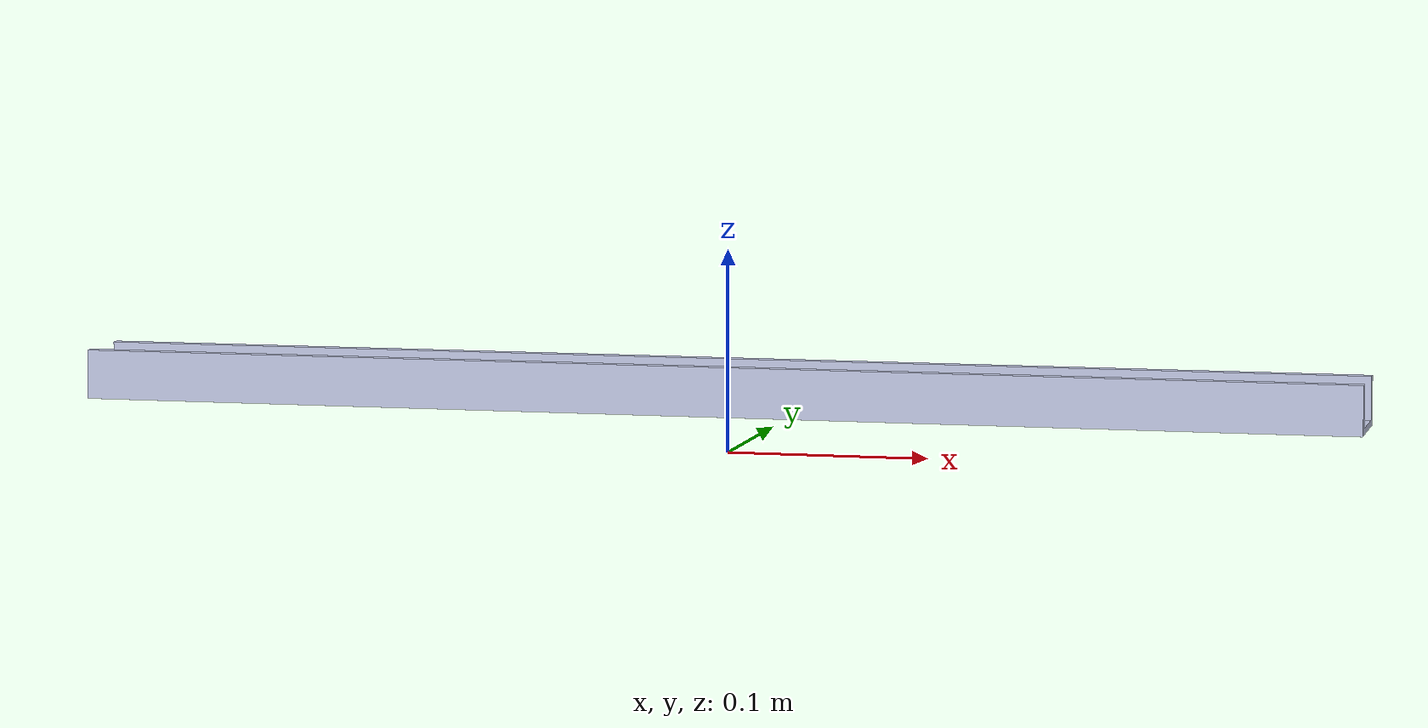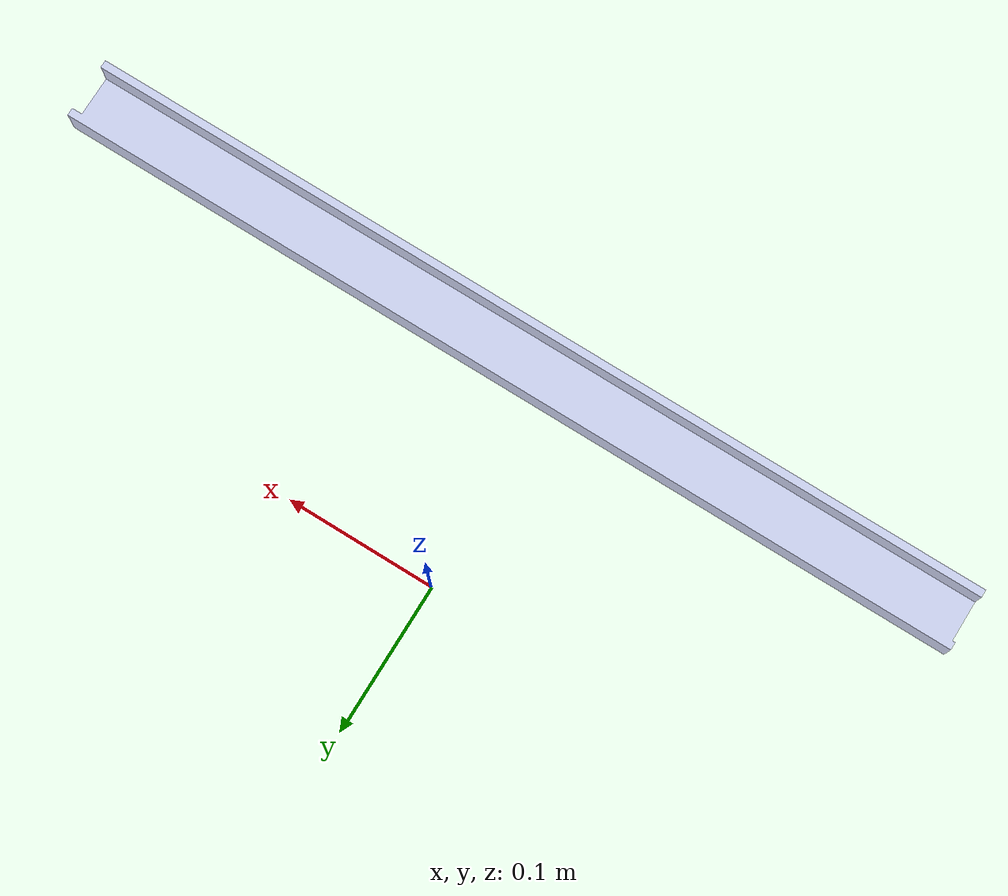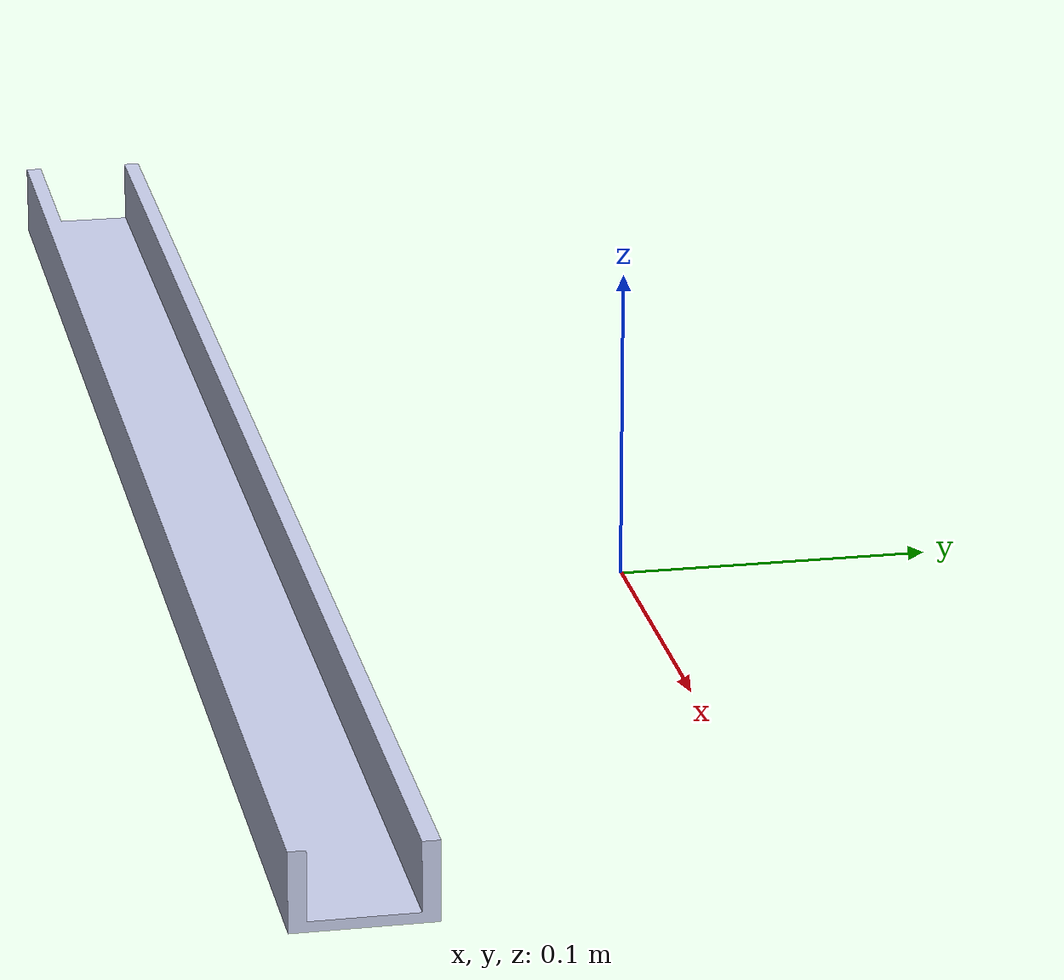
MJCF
<mujoco model="Assembly_mounting_rod_v5">
  <compiler meshdir="./" />

  <asset>
    <mesh name="base_link" file="base_link.STL" scale="1 1 1"/>
  </asset>

  <worldbody>
    <body name="base_link" pos="0 0 0">
      <joint type="free"/>
      <inertial pos="0 -0.1 0" mass="0.192"
                fullinertia="5.6605E-05 0.00577 0.0058066 -3.5505E-20 -7.1115E-22 9.058E-21" />
      <geom type="mesh" mesh="base_link" pos="0 0 0" rgba="0.79216 0.81961 0.93333 1"/>
    </body>
  </worldbody>
</mujoco>
